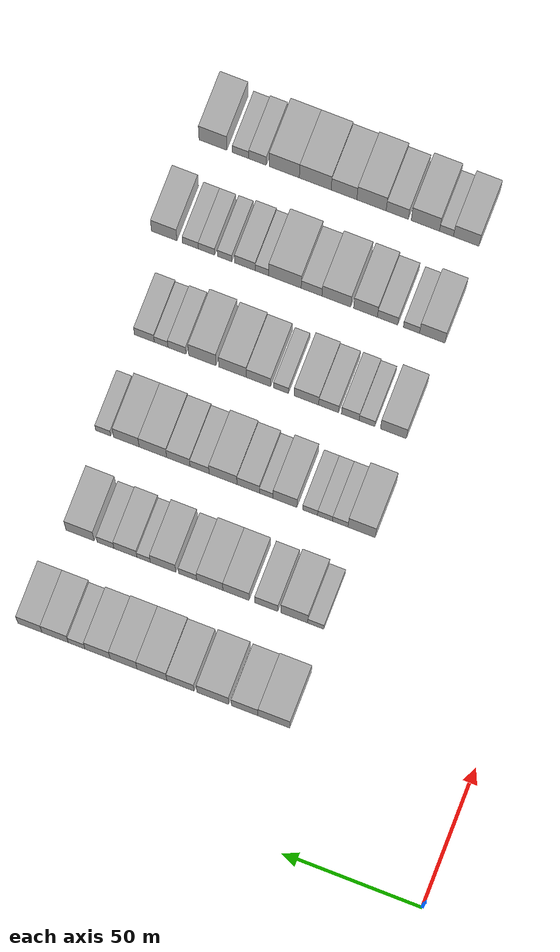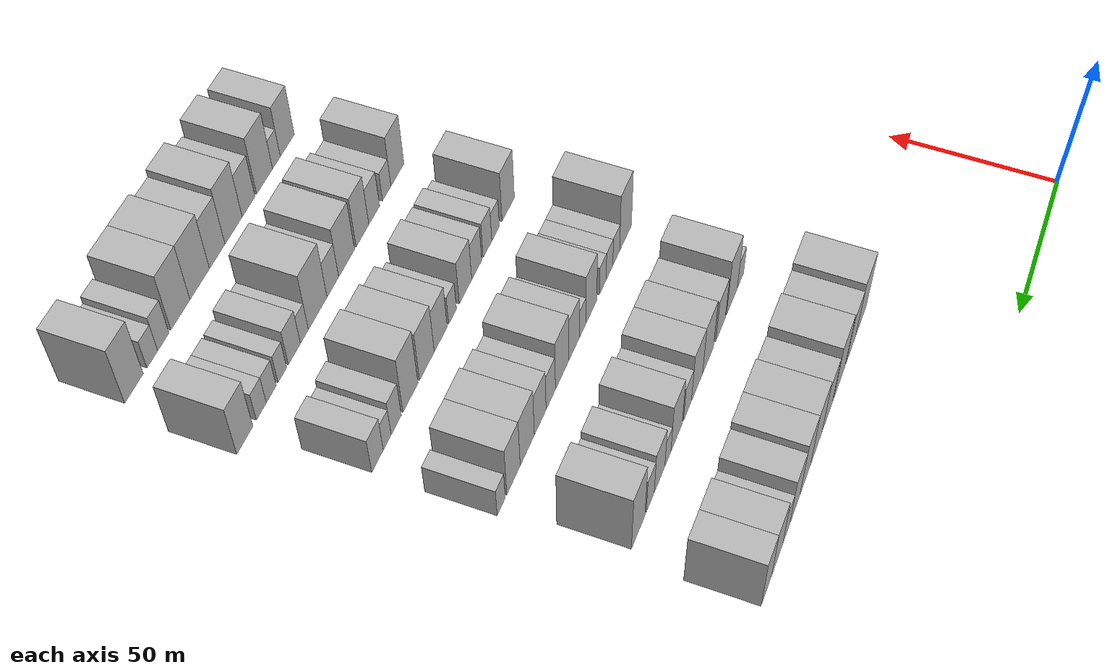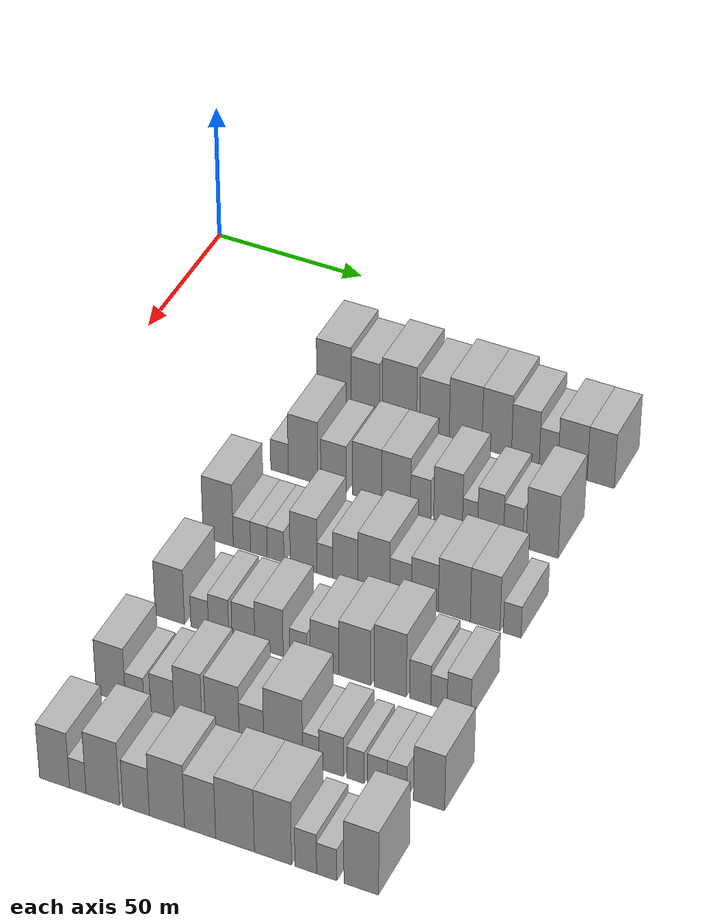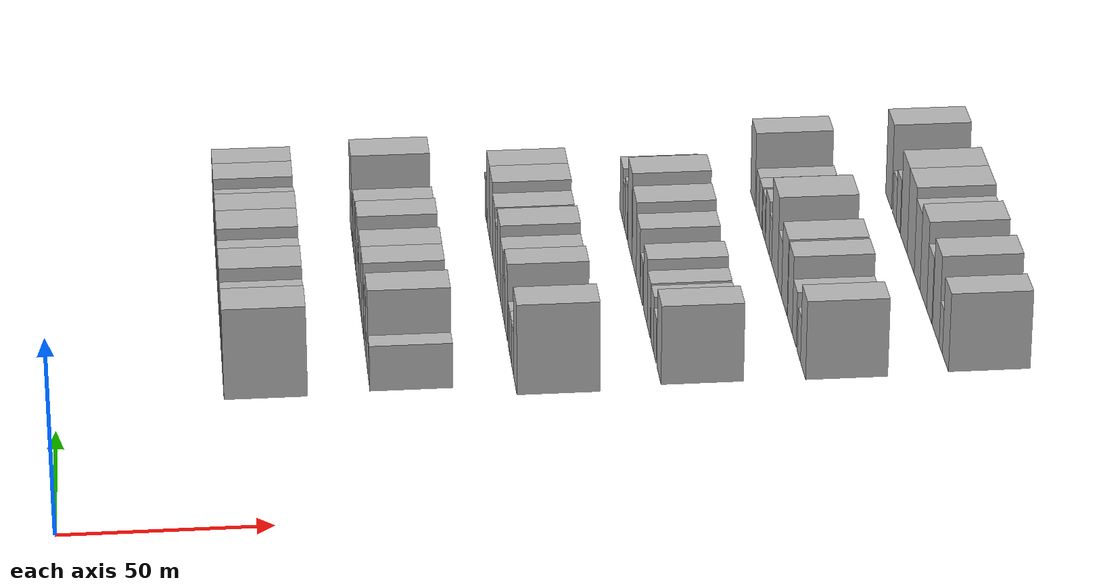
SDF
<sdf version="1.6">
 <world name="default">
  <model name="building_63">
   <static>1</static>
   <pose>50.0000 68.3072 0 0.000000 0.000000 0.000000</pose>
   <link name="link">
    <pose>0 0 12.00 0 0 0</pose>
    <collision name="collision"><geometry><box><size>20.0000 11.3854 24.0000</size></box></geometry></collision>
    <visual name="visual">
     <cast_shadows>0</cast_shadows>
     <geometry><box><size>20.0000 11.3854 24.0000</size></box></geometry>
     <material>
      <script>
       <uri>model://HANNAS_wall/materials/scripts</uri>
       <uri>model://HANNAS_wall/materials/textures</uri>
       <name>vrc/HANNAS_wall</name>
      </script>
     </material>
    </visual>
   </link>
  </model>
  <model name="building_64">
   <static>1</static>
   <pose>50.0000 78.7420 0 0.000000 0.000000 0.000000</pose>
   <link name="link">
    <pose>0 0 10.50 0 0 0</pose>
    <collision name="collision"><geometry><box><size>20.0000 9.4842 21.0000</size></box></geometry></collision>
    <visual name="visual">
     <cast_shadows>0</cast_shadows>
     <geometry><box><size>20.0000 9.4842 21.0000</size></box></geometry>
     <material>
      <script>
       <uri>model://HANNAS_wall/materials/scripts</uri>
       <uri>model://HANNAS_wall/materials/textures</uri>
       <name>vrc/HANNAS_wall</name>
      </script>
     </material>
    </visual>
   </link>
  </model>
  <model name="building_65">
   <static>1</static>
   <pose>50.0000 90.1589 0 0.000000 0.000000 0.000000</pose>
   <link name="link">
    <pose>0 0 12.00 0 0 0</pose>
    <collision name="collision"><geometry><box><size>20.0000 11.3498 24.0000</size></box></geometry></collision>
    <visual name="visual">
     <cast_shadows>0</cast_shadows>
     <geometry><box><size>20.0000 11.3498 24.0000</size></box></geometry>
     <material>
      <script>
       <uri>model://HANNAS_wall/materials/scripts</uri>
       <uri>model://HANNAS_wall/materials/textures</uri>
       <name>vrc/HANNAS_wall</name>
      </script>
     </material>
    </visual>
   </link>
  </model>
  <model name="building_66">
   <static>1</static>
   <pose>50.0000 101.7021 0 0.000000 0.000000 0.000000</pose>
   <link name="link">
    <pose>0 0 10.50 0 0 0</pose>
    <collision name="collision"><geometry><box><size>20.0000 9.7366 21.0000</size></box></geometry></collision>
    <visual name="visual">
     <cast_shadows>0</cast_shadows>
     <geometry><box><size>20.0000 9.7366 21.0000</size></box></geometry>
     <material>
      <script>
       <uri>model://HANNAS_wall/materials/scripts</uri>
       <uri>model://HANNAS_wall/materials/textures</uri>
       <name>vrc/HANNAS_wall</name>
      </script>
     </material>
    </visual>
   </link>
  </model>
  <model name="building_67">
   <static>1</static>
   <pose>50.0000 111.9166 0 0.000000 0.000000 0.000000</pose>
   <link name="link">
    <pose>0 0 12.00 0 0 0</pose>
    <collision name="collision"><geometry><box><size>20.0000 10.6924 24.0000</size></box></geometry></collision>
    <visual name="visual">
     <cast_shadows>0</cast_shadows>
     <geometry><box><size>20.0000 10.6924 24.0000</size></box></geometry>
     <material>
      <script>
       <uri>model://HANNAS_wall/materials/scripts</uri>
       <uri>model://HANNAS_wall/materials/textures</uri>
       <name>vrc/HANNAS_wall</name>
      </script>
     </material>
    </visual>
   </link>
  </model>
  <model name="building_68">
   <static>1</static>
   <pose>50.0000 122.0639 0 0.000000 0.000000 0.000000</pose>
   <link name="link">
    <pose>0 0 12.00 0 0 0</pose>
    <collision name="collision"><geometry><box><size>20.0000 9.6023 24.0000</size></box></geometry></collision>
    <visual name="visual">
     <cast_shadows>0</cast_shadows>
     <geometry><box><size>20.0000 9.6023 24.0000</size></box></geometry>
     <material>
      <script>
       <uri>model://HANNAS_wall/materials/scripts</uri>
       <uri>model://HANNAS_wall/materials/textures</uri>
       <name>vrc/HANNAS_wall</name>
      </script>
     </material>
    </visual>
   </link>
  </model>
  <model name="building_69">
   <static>1</static>
   <pose>50.0000 131.3592 0 0.000000 0.000000 0.000000</pose>
   <link name="link">
    <pose>0 0 10.50 0 0 0</pose>
    <collision name="collision"><geometry><box><size>20.0000 8.9881 21.0000</size></box></geometry></collision>
    <visual name="visual">
     <cast_shadows>0</cast_shadows>
     <geometry><box><size>20.0000 8.9881 21.0000</size></box></geometry>
     <material>
      <script>
       <uri>model://HANNAS_wall/materials/scripts</uri>
       <uri>model://HANNAS_wall/materials/textures</uri>
       <name>vrc/HANNAS_wall</name>
      </script>
     </material>
    </visual>
   </link>
  </model>
  <model name="building_70">
   <static>1</static>
   <pose>50.0000 138.8753 0 0.000000 0.000000 0.000000</pose>
   <link name="link">
    <pose>0 0 7.50 0 0 0</pose>
    <collision name="collision"><geometry><box><size>20.0000 6.0442 15.0000</size></box></geometry></collision>
    <visual name="visual">
     <cast_shadows>0</cast_shadows>
     <geometry><box><size>20.0000 6.0442 15.0000</size></box></geometry>
     <material>
      <script>
       <uri>model://HANNAS_wall/materials/scripts</uri>
       <uri>model://HANNAS_wall/materials/textures</uri>
       <name>vrc/HANNAS_wall</name>
      </script>
     </material>
    </visual>
   </link>
  </model>
  <model name="building_71">
   <static>1</static>
   <pose>50.0000 146.5971 0 0.000000 0.000000 0.000000</pose>
   <link name="link">
    <pose>0 0 10.50 0 0 0</pose>
    <collision name="collision"><geometry><box><size>20.0000 9.3993 21.0000</size></box></geometry></collision>
    <visual name="visual">
     <cast_shadows>0</cast_shadows>
     <geometry><box><size>20.0000 9.3993 21.0000</size></box></geometry>
     <material>
      <script>
       <uri>model://HANNAS_wall/materials/scripts</uri>
       <uri>model://HANNAS_wall/materials/textures</uri>
       <name>vrc/HANNAS_wall</name>
      </script>
     </material>
    </visual>
   </link>
  </model>
  <model name="building_72">
   <static>1</static>
   <pose>50.0000 155.6219 0 0.000000 0.000000 0.000000</pose>
   <link name="link">
    <pose>0 0 10.50 0 0 0</pose>
    <collision name="collision"><geometry><box><size>20.0000 8.6504 21.0000</size></box></geometry></collision>
    <visual name="visual">
     <cast_shadows>0</cast_shadows>
     <geometry><box><size>20.0000 8.6504 21.0000</size></box></geometry>
     <material>
      <script>
       <uri>model://HANNAS_wall/materials/scripts</uri>
       <uri>model://HANNAS_wall/materials/textures</uri>
       <name>vrc/HANNAS_wall</name>
      </script>
     </material>
    </visual>
   </link>
  </model>
  <model name="building_192">
   <static>1</static>
   <pose>85.0000 66.8384 0 0.000000 0.000000 0.000000</pose>
   <link name="link">
    <pose>0 0 6.00 0 0 0</pose>
    <collision name="collision"><geometry><box><size>20.0000 5.7813 12.0000</size></box></geometry></collision>
    <visual name="visual">
     <cast_shadows>0</cast_shadows>
     <geometry><box><size>20.0000 5.7813 12.0000</size></box></geometry>
     <material>
      <script>
       <uri>model://HANNAS_wall/materials/scripts</uri>
       <uri>model://HANNAS_wall/materials/textures</uri>
       <name>vrc/HANNAS_wall</name>
      </script>
     </material>
    </visual>
   </link>
  </model>
  <model name="building_193">
   <static>1</static>
   <pose>85.0000 74.5689 0 0.000000 0.000000 0.000000</pose>
   <link name="link">
    <pose>0 0 12.00 0 0 0</pose>
    <collision name="collision"><geometry><box><size>20.0000 9.6796 24.0000</size></box></geometry></collision>
    <visual name="visual">
     <cast_shadows>0</cast_shadows>
     <geometry><box><size>20.0000 9.6796 24.0000</size></box></geometry>
     <material>
      <script>
       <uri>model://HANNAS_wall/materials/scripts</uri>
       <uri>model://HANNAS_wall/materials/textures</uri>
       <name>vrc/HANNAS_wall</name>
      </script>
     </material>
    </visual>
   </link>
  </model>
  <model name="building_194">
   <static>1</static>
   <pose>85.0000 84.5691 0 0.000000 0.000000 0.000000</pose>
   <link name="link">
    <pose>0 0 9.00 0 0 0</pose>
    <collision name="collision"><geometry><box><size>20.0000 8.3207 18.0000</size></box></geometry></collision>
    <visual name="visual">
     <cast_shadows>0</cast_shadows>
     <geometry><box><size>20.0000 8.3207 18.0000</size></box></geometry>
     <material>
      <script>
       <uri>model://HANNAS_wall/materials/scripts</uri>
       <uri>model://HANNAS_wall/materials/textures</uri>
       <name>vrc/HANNAS_wall</name>
      </script>
     </material>
    </visual>
   </link>
  </model>
  <model name="building_195">
   <static>1</static>
   <pose>85.0000 95.4205 0 0.000000 0.000000 0.000000</pose>
   <link name="link">
    <pose>0 0 10.50 0 0 0</pose>
    <collision name="collision"><geometry><box><size>20.0000 9.3821 21.0000</size></box></geometry></collision>
    <visual name="visual">
     <cast_shadows>0</cast_shadows>
     <geometry><box><size>20.0000 9.3821 21.0000</size></box></geometry>
     <material>
      <script>
       <uri>model://HANNAS_wall/materials/scripts</uri>
       <uri>model://HANNAS_wall/materials/textures</uri>
       <name>vrc/HANNAS_wall</name>
      </script>
     </material>
    </visual>
   </link>
  </model>
  <model name="building_196">
   <static>1</static>
   <pose>85.0000 104.8010 0 0.000000 0.000000 0.000000</pose>
   <link name="link">
    <pose>0 0 10.50 0 0 0</pose>
    <collision name="collision"><geometry><box><size>20.0000 9.3789 21.0000</size></box></geometry></collision>
    <visual name="visual">
     <cast_shadows>0</cast_shadows>
     <geometry><box><size>20.0000 9.3789 21.0000</size></box></geometry>
     <material>
      <script>
       <uri>model://HANNAS_wall/materials/scripts</uri>
       <uri>model://HANNAS_wall/materials/textures</uri>
       <name>vrc/HANNAS_wall</name>
      </script>
     </material>
    </visual>
   </link>
  </model>
  <model name="building_197">
   <static>1</static>
   <pose>85.0000 112.7380 0 0.000000 0.000000 0.000000</pose>
   <link name="link">
    <pose>0 0 7.50 0 0 0</pose>
    <collision name="collision"><geometry><box><size>20.0000 6.4950 15.0000</size></box></geometry></collision>
    <visual name="visual">
     <cast_shadows>0</cast_shadows>
     <geometry><box><size>20.0000 6.4950 15.0000</size></box></geometry>
     <material>
      <script>
       <uri>model://HANNAS_wall/materials/scripts</uri>
       <uri>model://HANNAS_wall/materials/textures</uri>
       <name>vrc/HANNAS_wall</name>
      </script>
     </material>
    </visual>
   </link>
  </model>
  <model name="building_198">
   <static>1</static>
   <pose>85.0000 121.5628 0 0.000000 0.000000 0.000000</pose>
   <link name="link">
    <pose>0 0 10.50 0 0 0</pose>
    <collision name="collision"><geometry><box><size>20.0000 9.1546 21.0000</size></box></geometry></collision>
    <visual name="visual">
     <cast_shadows>0</cast_shadows>
     <geometry><box><size>20.0000 9.1546 21.0000</size></box></geometry>
     <material>
      <script>
       <uri>model://HANNAS_wall/materials/scripts</uri>
       <uri>model://HANNAS_wall/materials/textures</uri>
       <name>vrc/HANNAS_wall</name>
      </script>
     </material>
    </visual>
   </link>
  </model>
  <model name="building_199">
   <static>1</static>
   <pose>85.0000 128.5460 0 0.000000 0.000000 0.000000</pose>
   <link name="link">
    <pose>0 0 6.00 0 0 0</pose>
    <collision name="collision"><geometry><box><size>20.0000 4.8119 12.0000</size></box></geometry></collision>
    <visual name="visual">
     <cast_shadows>0</cast_shadows>
     <geometry><box><size>20.0000 4.8119 12.0000</size></box></geometry>
     <material>
      <script>
       <uri>model://HANNAS_wall/materials/scripts</uri>
       <uri>model://HANNAS_wall/materials/textures</uri>
       <name>vrc/HANNAS_wall</name>
      </script>
     </material>
    </visual>
   </link>
  </model>
  <model name="building_200">
   <static>1</static>
   <pose>85.0000 135.0746 0 0.000000 0.000000 0.000000</pose>
   <link name="link">
    <pose>0 0 9.00 0 0 0</pose>
    <collision name="collision"><geometry><box><size>20.0000 8.2455 18.0000</size></box></geometry></collision>
    <visual name="visual">
     <cast_shadows>0</cast_shadows>
     <geometry><box><size>20.0000 8.2455 18.0000</size></box></geometry>
     <material>
      <script>
       <uri>model://HANNAS_wall/materials/scripts</uri>
       <uri>model://HANNAS_wall/materials/textures</uri>
       <name>vrc/HANNAS_wall</name>
      </script>
     </material>
    </visual>
   </link>
  </model>
  <model name="building_201">
   <static>1</static>
   <pose>85.0000 142.2368 0 0.000000 0.000000 0.000000</pose>
   <link name="link">
    <pose>0 0 7.50 0 0 0</pose>
    <collision name="collision"><geometry><box><size>20.0000 6.0789 15.0000</size></box></geometry></collision>
    <visual name="visual">
     <cast_shadows>0</cast_shadows>
     <geometry><box><size>20.0000 6.0789 15.0000</size></box></geometry>
     <material>
      <script>
       <uri>model://HANNAS_wall/materials/scripts</uri>
       <uri>model://HANNAS_wall/materials/textures</uri>
       <name>vrc/HANNAS_wall</name>
      </script>
     </material>
    </visual>
   </link>
  </model>
  <model name="building_202">
   <static>1</static>
   <pose>85.0000 151.3462 0 0.000000 0.000000 0.000000</pose>
   <link name="link">
    <pose>0 0 12.00 0 0 0</pose>
    <collision name="collision"><geometry><box><size>20.0000 10.1400 24.0000</size></box></geometry></collision>
    <visual name="visual">
     <cast_shadows>0</cast_shadows>
     <geometry><box><size>20.0000 10.1400 24.0000</size></box></geometry>
     <material>
      <script>
       <uri>model://HANNAS_wall/materials/scripts</uri>
       <uri>model://HANNAS_wall/materials/textures</uri>
       <name>vrc/HANNAS_wall</name>
      </script>
     </material>
    </visual>
   </link>
  </model>
  <model name="building_318">
   <static>1</static>
   <pose>120.0000 63.8635 0 0.000000 0.000000 0.000000</pose>
   <link name="link">
    <pose>0 0 12.00 0 0 0</pose>
    <collision name="collision"><geometry><box><size>20.0000 9.7882 24.0000</size></box></geometry></collision>
    <visual name="visual">
     <cast_shadows>0</cast_shadows>
     <geometry><box><size>20.0000 9.7882 24.0000</size></box></geometry>
     <material>
      <script>
       <uri>model://HANNAS_wall/materials/scripts</uri>
       <uri>model://HANNAS_wall/materials/textures</uri>
       <name>vrc/HANNAS_wall</name>
      </script>
     </material>
    </visual>
   </link>
  </model>
  <model name="building_319">
   <static>1</static>
   <pose>120.0000 71.5526 0 0.000000 0.000000 0.000000</pose>
   <link name="link">
    <pose>0 0 6.00 0 0 0</pose>
    <collision name="collision"><geometry><box><size>20.0000 5.5900 12.0000</size></box></geometry></collision>
    <visual name="visual">
     <cast_shadows>0</cast_shadows>
     <geometry><box><size>20.0000 5.5900 12.0000</size></box></geometry>
     <material>
      <script>
       <uri>model://HANNAS_wall/materials/scripts</uri>
       <uri>model://HANNAS_wall/materials/textures</uri>
       <name>vrc/HANNAS_wall</name>
      </script>
     </material>
    </visual>
   </link>
  </model>
  <model name="building_320">
   <static>1</static>
   <pose>120.0000 77.0161 0 0.000000 0.000000 0.000000</pose>
   <link name="link">
    <pose>0 0 6.00 0 0 0</pose>
    <collision name="collision"><geometry><box><size>20.0000 5.3370 12.0000</size></box></geometry></collision>
    <visual name="visual">
     <cast_shadows>0</cast_shadows>
     <geometry><box><size>20.0000 5.3370 12.0000</size></box></geometry>
     <material>
      <script>
       <uri>model://HANNAS_wall/materials/scripts</uri>
       <uri>model://HANNAS_wall/materials/textures</uri>
       <name>vrc/HANNAS_wall</name>
      </script>
     </material>
    </visual>
   </link>
  </model>
  <model name="building_321">
   <static>1</static>
   <pose>120.0000 82.3859 0 0.000000 0.000000 0.000000</pose>
   <link name="link">
    <pose>0 0 6.00 0 0 0</pose>
    <collision name="collision"><geometry><box><size>20.0000 5.4027 12.0000</size></box></geometry></collision>
    <visual name="visual">
     <cast_shadows>0</cast_shadows>
     <geometry><box><size>20.0000 5.4027 12.0000</size></box></geometry>
     <material>
      <script>
       <uri>model://HANNAS_wall/materials/scripts</uri>
       <uri>model://HANNAS_wall/materials/textures</uri>
       <name>vrc/HANNAS_wall</name>
      </script>
     </material>
    </visual>
   </link>
  </model>
  <model name="building_322">
   <static>1</static>
   <pose>120.0000 91.3780 0 0.000000 0.000000 0.000000</pose>
   <link name="link">
    <pose>0 0 10.50 0 0 0</pose>
    <collision name="collision"><geometry><box><size>20.0000 8.5814 21.0000</size></box></geometry></collision>
    <visual name="visual">
     <cast_shadows>0</cast_shadows>
     <geometry><box><size>20.0000 8.5814 21.0000</size></box></geometry>
     <material>
      <script>
       <uri>model://HANNAS_wall/materials/scripts</uri>
       <uri>model://HANNAS_wall/materials/textures</uri>
       <name>vrc/HANNAS_wall</name>
      </script>
     </material>
    </visual>
   </link>
  </model>
  <model name="building_323">
   <static>1</static>
   <pose>120.0000 98.1339 0 0.000000 0.000000 0.000000</pose>
   <link name="link">
    <pose>0 0 6.00 0 0 0</pose>
    <collision name="collision"><geometry><box><size>20.0000 4.9304 12.0000</size></box></geometry></collision>
    <visual name="visual">
     <cast_shadows>0</cast_shadows>
     <geometry><box><size>20.0000 4.9304 12.0000</size></box></geometry>
     <material>
      <script>
       <uri>model://HANNAS_wall/materials/scripts</uri>
       <uri>model://HANNAS_wall/materials/textures</uri>
       <name>vrc/HANNAS_wall</name>
      </script>
     </material>
    </visual>
   </link>
  </model>
  <model name="building_324">
   <static>1</static>
   <pose>120.0000 104.6269 0 0.000000 0.000000 0.000000</pose>
   <link name="link">
    <pose>0 0 9.00 0 0 0</pose>
    <collision name="collision"><geometry><box><size>20.0000 8.0557 18.0000</size></box></geometry></collision>
    <visual name="visual">
     <cast_shadows>0</cast_shadows>
     <geometry><box><size>20.0000 8.0557 18.0000</size></box></geometry>
     <material>
      <script>
       <uri>model://HANNAS_wall/materials/scripts</uri>
       <uri>model://HANNAS_wall/materials/textures</uri>
       <name>vrc/HANNAS_wall</name>
      </script>
     </material>
    </visual>
   </link>
  </model>
  <model name="building_325">
   <static>1</static>
   <pose>120.0000 113.6623 0 0.000000 0.000000 0.000000</pose>
   <link name="link">
    <pose>0 0 10.50 0 0 0</pose>
    <collision name="collision"><geometry><box><size>20.0000 10.0149 21.0000</size></box></geometry></collision>
    <visual name="visual">
     <cast_shadows>0</cast_shadows>
     <geometry><box><size>20.0000 10.0149 21.0000</size></box></geometry>
     <material>
      <script>
       <uri>model://HANNAS_wall/materials/scripts</uri>
       <uri>model://HANNAS_wall/materials/textures</uri>
       <name>vrc/HANNAS_wall</name>
      </script>
     </material>
    </visual>
   </link>
  </model>
  <model name="building_326">
   <static>1</static>
   <pose>120.0000 122.0898 0 0.000000 0.000000 0.000000</pose>
   <link name="link">
    <pose>0 0 7.50 0 0 0</pose>
    <collision name="collision"><geometry><box><size>20.0000 6.8402 15.0000</size></box></geometry></collision>
    <visual name="visual">
     <cast_shadows>0</cast_shadows>
     <geometry><box><size>20.0000 6.8402 15.0000</size></box></geometry>
     <material>
      <script>
       <uri>model://HANNAS_wall/materials/scripts</uri>
       <uri>model://HANNAS_wall/materials/textures</uri>
       <name>vrc/HANNAS_wall</name>
      </script>
     </material>
    </visual>
   </link>
  </model>
  <model name="building_327">
   <static>1</static>
   <pose>120.0000 129.7097 0 0.000000 0.000000 0.000000</pose>
   <link name="link">
    <pose>0 0 9.00 0 0 0</pose>
    <collision name="collision"><geometry><box><size>20.0000 8.3996 18.0000</size></box></geometry></collision>
    <visual name="visual">
     <cast_shadows>0</cast_shadows>
     <geometry><box><size>20.0000 8.3996 18.0000</size></box></geometry>
     <material>
      <script>
       <uri>model://HANNAS_wall/materials/scripts</uri>
       <uri>model://HANNAS_wall/materials/textures</uri>
       <name>vrc/HANNAS_wall</name>
      </script>
     </material>
    </visual>
   </link>
  </model>
  <model name="building_328">
   <static>1</static>
   <pose>120.0000 138.8685 0 0.000000 0.000000 0.000000</pose>
   <link name="link">
    <pose>0 0 10.50 0 0 0</pose>
    <collision name="collision"><geometry><box><size>20.0000 9.9180 21.0000</size></box></geometry></collision>
    <visual name="visual">
     <cast_shadows>0</cast_shadows>
     <geometry><box><size>20.0000 9.9180 21.0000</size></box></geometry>
     <material>
      <script>
       <uri>model://HANNAS_wall/materials/scripts</uri>
       <uri>model://HANNAS_wall/materials/textures</uri>
       <name>vrc/HANNAS_wall</name>
      </script>
     </material>
    </visual>
   </link>
  </model>
  <model name="building_329">
   <static>1</static>
   <pose>120.0000 148.4328 0 0.000000 0.000000 0.000000</pose>
   <link name="link">
    <pose>0 0 10.50 0 0 0</pose>
    <collision name="collision"><geometry><box><size>20.0000 9.2106 21.0000</size></box></geometry></collision>
    <visual name="visual">
     <cast_shadows>0</cast_shadows>
     <geometry><box><size>20.0000 9.2106 21.0000</size></box></geometry>
     <material>
      <script>
       <uri>model://HANNAS_wall/materials/scripts</uri>
       <uri>model://HANNAS_wall/materials/textures</uri>
       <name>vrc/HANNAS_wall</name>
      </script>
     </material>
    </visual>
   </link>
  </model>
  <model name="building_330">
   <static>1</static>
   <pose>120.0000 156.7709 0 0.000000 0.000000 0.000000</pose>
   <link name="link">
    <pose>0 0 6.00 0 0 0</pose>
    <collision name="collision"><geometry><box><size>20.0000 5.4656 12.0000</size></box></geometry></collision>
    <visual name="visual">
     <cast_shadows>0</cast_shadows>
     <geometry><box><size>20.0000 5.4656 12.0000</size></box></geometry>
     <material>
      <script>
       <uri>model://HANNAS_wall/materials/scripts</uri>
       <uri>model://HANNAS_wall/materials/textures</uri>
       <name>vrc/HANNAS_wall</name>
      </script>
     </material>
    </visual>
   </link>
  </model>
  <model name="building_451">
   <static>1</static>
   <pose>155.0000 65.8855 0 0.000000 0.000000 0.000000</pose>
   <link name="link">
    <pose>0 0 10.50 0 0 0</pose>
    <collision name="collision"><geometry><box><size>20.0000 9.3335 21.0000</size></box></geometry></collision>
    <visual name="visual">
     <cast_shadows>0</cast_shadows>
     <geometry><box><size>20.0000 9.3335 21.0000</size></box></geometry>
     <material>
      <script>
       <uri>model://HANNAS_wall/materials/scripts</uri>
       <uri>model://HANNAS_wall/materials/textures</uri>
       <name>vrc/HANNAS_wall</name>
      </script>
     </material>
    </visual>
   </link>
  </model>
  <model name="building_452">
   <static>1</static>
   <pose>155.0000 75.3764 0 0.000000 0.000000 0.000000</pose>
   <link name="link">
    <pose>0 0 6.00 0 0 0</pose>
    <collision name="collision"><geometry><box><size>20.0000 5.6483 12.0000</size></box></geometry></collision>
    <visual name="visual">
     <cast_shadows>0</cast_shadows>
     <geometry><box><size>20.0000 5.6483 12.0000</size></box></geometry>
     <material>
      <script>
       <uri>model://HANNAS_wall/materials/scripts</uri>
       <uri>model://HANNAS_wall/materials/textures</uri>
       <name>vrc/HANNAS_wall</name>
      </script>
     </material>
    </visual>
   </link>
  </model>
  <model name="building_453">
   <static>1</static>
   <pose>155.0000 81.3987 0 0.000000 0.000000 0.000000</pose>
   <link name="link">
    <pose>0 0 7.50 0 0 0</pose>
    <collision name="collision"><geometry><box><size>20.0000 6.3963 15.0000</size></box></geometry></collision>
    <visual name="visual">
     <cast_shadows>0</cast_shadows>
     <geometry><box><size>20.0000 6.3963 15.0000</size></box></geometry>
     <material>
      <script>
       <uri>model://HANNAS_wall/materials/scripts</uri>
       <uri>model://HANNAS_wall/materials/textures</uri>
       <name>vrc/HANNAS_wall</name>
      </script>
     </material>
    </visual>
   </link>
  </model>
  <model name="building_454">
   <static>1</static>
   <pose>155.0000 89.1889 0 0.000000 0.000000 0.000000</pose>
   <link name="link">
    <pose>0 0 7.50 0 0 0</pose>
    <collision name="collision"><geometry><box><size>20.0000 7.1841 15.0000</size></box></geometry></collision>
    <visual name="visual">
     <cast_shadows>0</cast_shadows>
     <geometry><box><size>20.0000 7.1841 15.0000</size></box></geometry>
     <material>
      <script>
       <uri>model://HANNAS_wall/materials/scripts</uri>
       <uri>model://HANNAS_wall/materials/textures</uri>
       <name>vrc/HANNAS_wall</name>
      </script>
     </material>
    </visual>
   </link>
  </model>
  <model name="building_455">
   <static>1</static>
   <pose>155.0000 97.2176 0 0.000000 0.000000 0.000000</pose>
   <link name="link">
    <pose>0 0 9.00 0 0 0</pose>
    <collision name="collision"><geometry><box><size>20.0000 8.8732 18.0000</size></box></geometry></collision>
    <visual name="visual">
     <cast_shadows>0</cast_shadows>
     <geometry><box><size>20.0000 8.8732 18.0000</size></box></geometry>
     <material>
      <script>
       <uri>model://HANNAS_wall/materials/scripts</uri>
       <uri>model://HANNAS_wall/materials/textures</uri>
       <name>vrc/HANNAS_wall</name>
      </script>
     </material>
    </visual>
   </link>
  </model>
  <model name="building_456">
   <static>1</static>
   <pose>155.0000 106.3478 0 0.000000 0.000000 0.000000</pose>
   <link name="link">
    <pose>0 0 6.00 0 0 0</pose>
    <collision name="collision"><geometry><box><size>20.0000 5.3872 12.0000</size></box></geometry></collision>
    <visual name="visual">
     <cast_shadows>0</cast_shadows>
     <geometry><box><size>20.0000 5.3872 12.0000</size></box></geometry>
     <material>
      <script>
       <uri>model://HANNAS_wall/materials/scripts</uri>
       <uri>model://HANNAS_wall/materials/textures</uri>
       <name>vrc/HANNAS_wall</name>
      </script>
     </material>
    </visual>
   </link>
  </model>
  <model name="building_457">
   <static>1</static>
   <pose>155.0000 114.4646 0 0.000000 0.000000 0.000000</pose>
   <link name="link">
    <pose>0 0 9.00 0 0 0</pose>
    <collision name="collision"><geometry><box><size>20.0000 8.8464 18.0000</size></box></geometry></collision>
    <visual name="visual">
     <cast_shadows>0</cast_shadows>
     <geometry><box><size>20.0000 8.8464 18.0000</size></box></geometry>
     <material>
      <script>
       <uri>model://HANNAS_wall/materials/scripts</uri>
       <uri>model://HANNAS_wall/materials/textures</uri>
       <name>vrc/HANNAS_wall</name>
      </script>
     </material>
    </visual>
   </link>
  </model>
  <model name="building_458">
   <static>1</static>
   <pose>155.0000 123.8259 0 0.000000 0.000000 0.000000</pose>
   <link name="link">
    <pose>0 0 10.50 0 0 0</pose>
    <collision name="collision"><geometry><box><size>20.0000 9.8761 21.0000</size></box></geometry></collision>
    <visual name="visual">
     <cast_shadows>0</cast_shadows>
     <geometry><box><size>20.0000 9.8761 21.0000</size></box></geometry>
     <material>
      <script>
       <uri>model://HANNAS_wall/materials/scripts</uri>
       <uri>model://HANNAS_wall/materials/textures</uri>
       <name>vrc/HANNAS_wall</name>
      </script>
     </material>
    </visual>
   </link>
  </model>
  <model name="building_459">
   <static>1</static>
   <pose>155.0000 134.6800 0 0.000000 0.000000 0.000000</pose>
   <link name="link">
    <pose>0 0 12.00 0 0 0</pose>
    <collision name="collision"><geometry><box><size>20.0000 9.8322 24.0000</size></box></geometry></collision>
    <visual name="visual">
     <cast_shadows>0</cast_shadows>
     <geometry><box><size>20.0000 9.8322 24.0000</size></box></geometry>
     <material>
      <script>
       <uri>model://HANNAS_wall/materials/scripts</uri>
       <uri>model://HANNAS_wall/materials/textures</uri>
       <name>vrc/HANNAS_wall</name>
      </script>
     </material>
    </visual>
   </link>
  </model>
  <model name="building_460">
   <static>1</static>
   <pose>155.0000 143.8297 0 0.000000 0.000000 0.000000</pose>
   <link name="link">
    <pose>0 0 7.50 0 0 0</pose>
    <collision name="collision"><geometry><box><size>20.0000 6.4671 15.0000</size></box></geometry></collision>
    <visual name="visual">
     <cast_shadows>0</cast_shadows>
     <geometry><box><size>20.0000 6.4671 15.0000</size></box></geometry>
     <material>
      <script>
       <uri>model://HANNAS_wall/materials/scripts</uri>
       <uri>model://HANNAS_wall/materials/textures</uri>
       <name>vrc/HANNAS_wall</name>
      </script>
     </material>
    </visual>
   </link>
  </model>
  <model name="building_461">
   <static>1</static>
   <pose>155.0000 149.5438 0 0.000000 0.000000 0.000000</pose>
   <link name="link">
    <pose>0 0 6.00 0 0 0</pose>
    <collision name="collision"><geometry><box><size>20.0000 4.9611 12.0000</size></box></geometry></collision>
    <visual name="visual">
     <cast_shadows>0</cast_shadows>
     <geometry><box><size>20.0000 4.9611 12.0000</size></box></geometry>
     <material>
      <script>
       <uri>model://HANNAS_wall/materials/scripts</uri>
       <uri>model://HANNAS_wall/materials/textures</uri>
       <name>vrc/HANNAS_wall</name>
      </script>
     </material>
    </visual>
   </link>
  </model>
  <model name="building_462">
   <static>1</static>
   <pose>155.0000 155.6038 0 0.000000 0.000000 0.000000</pose>
   <link name="link">
    <pose>0 0 7.50 0 0 0</pose>
    <collision name="collision"><geometry><box><size>20.0000 7.1589 15.0000</size></box></geometry></collision>
    <visual name="visual">
     <cast_shadows>0</cast_shadows>
     <geometry><box><size>20.0000 7.1589 15.0000</size></box></geometry>
     <material>
      <script>
       <uri>model://HANNAS_wall/materials/scripts</uri>
       <uri>model://HANNAS_wall/materials/textures</uri>
       <name>vrc/HANNAS_wall</name>
      </script>
     </material>
    </visual>
   </link>
  </model>
  <model name="building_581">
   <static>1</static>
   <pose>190.0000 65.3028 0 0.000000 0.000000 0.000000</pose>
   <link name="link">
    <pose>0 0 10.50 0 0 0</pose>
    <collision name="collision"><geometry><box><size>20.0000 9.1581 21.0000</size></box></geometry></collision>
    <visual name="visual">
     <cast_shadows>0</cast_shadows>
     <geometry><box><size>20.0000 9.1581 21.0000</size></box></geometry>
     <material>
      <script>
       <uri>model://HANNAS_wall/materials/scripts</uri>
       <uri>model://HANNAS_wall/materials/textures</uri>
       <name>vrc/HANNAS_wall</name>
      </script>
     </material>
    </visual>
   </link>
  </model>
  <model name="building_582">
   <static>1</static>
   <pose>190.0000 72.8061 0 0.000000 0.000000 0.000000</pose>
   <link name="link">
    <pose>0 0 6.00 0 0 0</pose>
    <collision name="collision"><geometry><box><size>20.0000 5.8483 12.0000</size></box></geometry></collision>
    <visual name="visual">
     <cast_shadows>0</cast_shadows>
     <geometry><box><size>20.0000 5.8483 12.0000</size></box></geometry>
     <material>
      <script>
       <uri>model://HANNAS_wall/materials/scripts</uri>
       <uri>model://HANNAS_wall/materials/textures</uri>
       <name>vrc/HANNAS_wall</name>
      </script>
     </material>
    </visual>
   </link>
  </model>
  <model name="building_583">
   <static>1</static>
   <pose>190.0000 81.4094 0 0.000000 0.000000 0.000000</pose>
   <link name="link">
    <pose>0 0 7.50 0 0 0</pose>
    <collision name="collision"><geometry><box><size>20.0000 7.3584 15.0000</size></box></geometry></collision>
    <visual name="visual">
     <cast_shadows>0</cast_shadows>
     <geometry><box><size>20.0000 7.3584 15.0000</size></box></geometry>
     <material>
      <script>
       <uri>model://HANNAS_wall/materials/scripts</uri>
       <uri>model://HANNAS_wall/materials/textures</uri>
       <name>vrc/HANNAS_wall</name>
      </script>
     </material>
    </visual>
   </link>
  </model>
  <model name="building_584">
   <static>1</static>
   <pose>190.0000 89.3812 0 0.000000 0.000000 0.000000</pose>
   <link name="link">
    <pose>0 0 10.50 0 0 0</pose>
    <collision name="collision"><geometry><box><size>20.0000 8.5850 21.0000</size></box></geometry></collision>
    <visual name="visual">
     <cast_shadows>0</cast_shadows>
     <geometry><box><size>20.0000 8.5850 21.0000</size></box></geometry>
     <material>
      <script>
       <uri>model://HANNAS_wall/materials/scripts</uri>
       <uri>model://HANNAS_wall/materials/textures</uri>
       <name>vrc/HANNAS_wall</name>
      </script>
     </material>
    </visual>
   </link>
  </model>
  <model name="building_585">
   <static>1</static>
   <pose>190.0000 99.8752 0 0.000000 0.000000 0.000000</pose>
   <link name="link">
    <pose>0 0 10.50 0 0 0</pose>
    <collision name="collision"><geometry><box><size>20.0000 10.4030 21.0000</size></box></geometry></collision>
    <visual name="visual">
     <cast_shadows>0</cast_shadows>
     <geometry><box><size>20.0000 10.4030 21.0000</size></box></geometry>
     <material>
      <script>
       <uri>model://HANNAS_wall/materials/scripts</uri>
       <uri>model://HANNAS_wall/materials/textures</uri>
       <name>vrc/HANNAS_wall</name>
      </script>
     </material>
    </visual>
   </link>
  </model>
  <model name="building_586">
   <static>1</static>
   <pose>190.0000 108.8245 0 0.000000 0.000000 0.000000</pose>
   <link name="link">
    <pose>0 0 7.50 0 0 0</pose>
    <collision name="collision"><geometry><box><size>20.0000 7.4956 15.0000</size></box></geometry></collision>
    <visual name="visual">
     <cast_shadows>0</cast_shadows>
     <geometry><box><size>20.0000 7.4956 15.0000</size></box></geometry>
     <material>
      <script>
       <uri>model://HANNAS_wall/materials/scripts</uri>
       <uri>model://HANNAS_wall/materials/textures</uri>
       <name>vrc/HANNAS_wall</name>
      </script>
     </material>
    </visual>
   </link>
  </model>
  <model name="building_587">
   <static>1</static>
   <pose>190.0000 118.4485 0 0.000000 0.000000 0.000000</pose>
   <link name="link">
    <pose>0 0 12.00 0 0 0</pose>
    <collision name="collision"><geometry><box><size>20.0000 11.7525 24.0000</size></box></geometry></collision>
    <visual name="visual">
     <cast_shadows>0</cast_shadows>
     <geometry><box><size>20.0000 11.7525 24.0000</size></box></geometry>
     <material>
      <script>
       <uri>model://HANNAS_wall/materials/scripts</uri>
       <uri>model://HANNAS_wall/materials/textures</uri>
       <name>vrc/HANNAS_wall</name>
      </script>
     </material>
    </visual>
   </link>
  </model>
  <model name="building_588">
   <static>1</static>
   <pose>190.0000 126.7717 0 0.000000 0.000000 0.000000</pose>
   <link name="link">
    <pose>0 0 6.00 0 0 0</pose>
    <collision name="collision"><geometry><box><size>20.0000 4.8938 12.0000</size></box></geometry></collision>
    <visual name="visual">
     <cast_shadows>0</cast_shadows>
     <geometry><box><size>20.0000 4.8938 12.0000</size></box></geometry>
     <material>
      <script>
       <uri>model://HANNAS_wall/materials/scripts</uri>
       <uri>model://HANNAS_wall/materials/textures</uri>
       <name>vrc/HANNAS_wall</name>
      </script>
     </material>
    </visual>
   </link>
  </model>
  <model name="building_589">
   <static>1</static>
   <pose>190.0000 132.9127 0 0.000000 0.000000 0.000000</pose>
   <link name="link">
    <pose>0 0 7.50 0 0 0</pose>
    <collision name="collision"><geometry><box><size>20.0000 7.3882 15.0000</size></box></geometry></collision>
    <visual name="visual">
     <cast_shadows>0</cast_shadows>
     <geometry><box><size>20.0000 7.3882 15.0000</size></box></geometry>
     <material>
      <script>
       <uri>model://HANNAS_wall/materials/scripts</uri>
       <uri>model://HANNAS_wall/materials/textures</uri>
       <name>vrc/HANNAS_wall</name>
      </script>
     </material>
    </visual>
   </link>
  </model>
  <model name="building_590">
   <static>1</static>
   <pose>190.0000 140.2104 0 0.000000 0.000000 0.000000</pose>
   <link name="link">
    <pose>0 0 6.00 0 0 0</pose>
    <collision name="collision"><geometry><box><size>20.0000 5.2074 12.0000</size></box></geometry></collision>
    <visual name="visual">
     <cast_shadows>0</cast_shadows>
     <geometry><box><size>20.0000 5.2074 12.0000</size></box></geometry>
     <material>
      <script>
       <uri>model://HANNAS_wall/materials/scripts</uri>
       <uri>model://HANNAS_wall/materials/textures</uri>
       <name>vrc/HANNAS_wall</name>
      </script>
     </material>
    </visual>
   </link>
  </model>
  <model name="building_591">
   <static>1</static>
   <pose>190.0000 146.7605 0 0.000000 0.000000 0.000000</pose>
   <link name="link">
    <pose>0 0 6.00 0 0 0</pose>
    <collision name="collision"><geometry><box><size>20.0000 5.8927 12.0000</size></box></geometry></collision>
    <visual name="visual">
     <cast_shadows>0</cast_shadows>
     <geometry><box><size>20.0000 5.8927 12.0000</size></box></geometry>
     <material>
      <script>
       <uri>model://HANNAS_wall/materials/scripts</uri>
       <uri>model://HANNAS_wall/materials/textures</uri>
       <name>vrc/HANNAS_wall</name>
      </script>
     </material>
    </visual>
   </link>
  </model>
  <model name="building_592">
   <static>1</static>
   <pose>190.0000 152.5863 0 0.000000 0.000000 0.000000</pose>
   <link name="link">
    <pose>0 0 6.00 0 0 0</pose>
    <collision name="collision"><geometry><box><size>20.0000 5.7589 12.0000</size></box></geometry></collision>
    <visual name="visual">
     <cast_shadows>0</cast_shadows>
     <geometry><box><size>20.0000 5.7589 12.0000</size></box></geometry>
     <material>
      <script>
       <uri>model://HANNAS_wall/materials/scripts</uri>
       <uri>model://HANNAS_wall/materials/textures</uri>
       <name>vrc/HANNAS_wall</name>
      </script>
     </material>
    </visual>
   </link>
  </model>
  <model name="building_593">
   <static>1</static>
   <pose>190.0000 162.0663 0 0.000000 0.000000 0.000000</pose>
   <link name="link">
    <pose>0 0 10.50 0 0 0</pose>
    <collision name="collision"><geometry><box><size>20.0000 9.2012 21.0000</size></box></geometry></collision>
    <visual name="visual">
     <cast_shadows>0</cast_shadows>
     <geometry><box><size>20.0000 9.2012 21.0000</size></box></geometry>
     <material>
      <script>
       <uri>model://HANNAS_wall/materials/scripts</uri>
       <uri>model://HANNAS_wall/materials/textures</uri>
       <name>vrc/HANNAS_wall</name>
      </script>
     </material>
    </visual>
   </link>
  </model>
  <model name="building_713">
   <static>1</static>
   <pose>225.0000 66.4185 0 0.000000 0.000000 0.000000</pose>
   <link name="link">
    <pose>0 0 10.50 0 0 0</pose>
    <collision name="collision"><geometry><box><size>20.0000 9.2233 21.0000</size></box></geometry></collision>
    <visual name="visual">
     <cast_shadows>0</cast_shadows>
     <geometry><box><size>20.0000 9.2233 21.0000</size></box></geometry>
     <material>
      <script>
       <uri>model://HANNAS_wall/materials/scripts</uri>
       <uri>model://HANNAS_wall/materials/textures</uri>
       <name>vrc/HANNAS_wall</name>
      </script>
     </material>
    </visual>
   </link>
  </model>
  <model name="building_714">
   <static>1</static>
   <pose>225.0000 73.5607 0 0.000000 0.000000 0.000000</pose>
   <link name="link">
    <pose>0 0 6.00 0 0 0</pose>
    <collision name="collision"><geometry><box><size>20.0000 5.0613 12.0000</size></box></geometry></collision>
    <visual name="visual">
     <cast_shadows>0</cast_shadows>
     <geometry><box><size>20.0000 5.0613 12.0000</size></box></geometry>
     <material>
      <script>
       <uri>model://HANNAS_wall/materials/scripts</uri>
       <uri>model://HANNAS_wall/materials/textures</uri>
       <name>vrc/HANNAS_wall</name>
      </script>
     </material>
    </visual>
   </link>
  </model>
  <model name="building_715">
   <static>1</static>
   <pose>225.0000 81.2097 0 0.000000 0.000000 0.000000</pose>
   <link name="link">
    <pose>0 0 12.00 0 0 0</pose>
    <collision name="collision"><geometry><box><size>20.0000 10.2368 24.0000</size></box></geometry></collision>
    <visual name="visual">
     <cast_shadows>0</cast_shadows>
     <geometry><box><size>20.0000 10.2368 24.0000</size></box></geometry>
     <material>
      <script>
       <uri>model://HANNAS_wall/materials/scripts</uri>
       <uri>model://HANNAS_wall/materials/textures</uri>
       <name>vrc/HANNAS_wall</name>
      </script>
     </material>
    </visual>
   </link>
  </model>
  <model name="building_716">
   <static>1</static>
   <pose>225.0000 91.3376 0 0.000000 0.000000 0.000000</pose>
   <link name="link">
    <pose>0 0 9.00 0 0 0</pose>
    <collision name="collision"><geometry><box><size>20.0000 8.0190 18.0000</size></box></geometry></collision>
    <visual name="visual">
     <cast_shadows>0</cast_shadows>
     <geometry><box><size>20.0000 8.0190 18.0000</size></box></geometry>
     <material>
      <script>
       <uri>model://HANNAS_wall/materials/scripts</uri>
       <uri>model://HANNAS_wall/materials/textures</uri>
       <name>vrc/HANNAS_wall</name>
      </script>
     </material>
    </visual>
   </link>
  </model>
  <model name="building_717">
   <static>1</static>
   <pose>225.0000 100.6397 0 0.000000 0.000000 0.000000</pose>
   <link name="link">
    <pose>0 0 12.00 0 0 0</pose>
    <collision name="collision"><geometry><box><size>20.0000 10.5851 24.0000</size></box></geometry></collision>
    <visual name="visual">
     <cast_shadows>0</cast_shadows>
     <geometry><box><size>20.0000 10.5851 24.0000</size></box></geometry>
     <material>
      <script>
       <uri>model://HANNAS_wall/materials/scripts</uri>
       <uri>model://HANNAS_wall/materials/textures</uri>
       <name>vrc/HANNAS_wall</name>
      </script>
     </material>
    </visual>
   </link>
  </model>
  <model name="building_718">
   <static>1</static>
   <pose>225.0000 110.5854 0 0.000000 0.000000 0.000000</pose>
   <link name="link">
    <pose>0 0 10.50 0 0 0</pose>
    <collision name="collision"><geometry><box><size>20.0000 9.3064 21.0000</size></box></geometry></collision>
    <visual name="visual">
     <cast_shadows>0</cast_shadows>
     <geometry><box><size>20.0000 9.3064 21.0000</size></box></geometry>
     <material>
      <script>
       <uri>model://HANNAS_wall/materials/scripts</uri>
       <uri>model://HANNAS_wall/materials/textures</uri>
       <name>vrc/HANNAS_wall</name>
      </script>
     </material>
    </visual>
   </link>
  </model>
  <model name="building_719">
   <static>1</static>
   <pose>225.0000 120.9912 0 0.000000 0.000000 0.000000</pose>
   <link name="link">
    <pose>0 0 12.00 0 0 0</pose>
    <collision name="collision"><geometry><box><size>20.0000 11.5051 24.0000</size></box></geometry></collision>
    <visual name="visual">
     <cast_shadows>0</cast_shadows>
     <geometry><box><size>20.0000 11.5051 24.0000</size></box></geometry>
     <material>
      <script>
       <uri>model://HANNAS_wall/materials/scripts</uri>
       <uri>model://HANNAS_wall/materials/textures</uri>
       <name>vrc/HANNAS_wall</name>
      </script>
     </material>
    </visual>
   </link>
  </model>
  <model name="building_720">
   <static>1</static>
   <pose>225.0000 132.2181 0 0.000000 0.000000 0.000000</pose>
   <link name="link">
    <pose>0 0 12.00 0 0 0</pose>
    <collision name="collision"><geometry><box><size>20.0000 10.9487 24.0000</size></box></geometry></collision>
    <visual name="visual">
     <cast_shadows>0</cast_shadows>
     <geometry><box><size>20.0000 10.9487 24.0000</size></box></geometry>
     <material>
      <script>
       <uri>model://HANNAS_wall/materials/scripts</uri>
       <uri>model://HANNAS_wall/materials/textures</uri>
       <name>vrc/HANNAS_wall</name>
      </script>
     </material>
    </visual>
   </link>
  </model>
  <model name="building_721">
   <static>1</static>
   <pose>225.0000 141.8695 0 0.000000 0.000000 0.000000</pose>
   <link name="link">
    <pose>0 0 7.50 0 0 0</pose>
    <collision name="collision"><geometry><box><size>20.0000 6.3541 15.0000</size></box></geometry></collision>
    <visual name="visual">
     <cast_shadows>0</cast_shadows>
     <geometry><box><size>20.0000 6.3541 15.0000</size></box></geometry>
     <material>
      <script>
       <uri>model://HANNAS_wall/materials/scripts</uri>
       <uri>model://HANNAS_wall/materials/textures</uri>
       <name>vrc/HANNAS_wall</name>
      </script>
     </material>
    </visual>
   </link>
  </model>
  <model name="building_722">
   <static>1</static>
   <pose>225.0000 148.0254 0 0.000000 0.000000 0.000000</pose>
   <link name="link">
    <pose>0 0 6.00 0 0 0</pose>
    <collision name="collision"><geometry><box><size>20.0000 5.9578 12.0000</size></box></geometry></collision>
    <visual name="visual">
     <cast_shadows>0</cast_shadows>
     <geometry><box><size>20.0000 5.9578 12.0000</size></box></geometry>
     <material>
      <script>
       <uri>model://HANNAS_wall/materials/scripts</uri>
       <uri>model://HANNAS_wall/materials/textures</uri>
       <name>vrc/HANNAS_wall</name>
      </script>
     </material>
    </visual>
   </link>
  </model>
  <model name="building_723">
   <static>1</static>
   <pose>225.0000 158.0338 0 0.000000 0.000000 0.000000</pose>
   <link name="link">
    <pose>0 0 12.00 0 0 0</pose>
    <collision name="collision"><geometry><box><size>20.0000 10.0589 24.0000</size></box></geometry></collision>
    <visual name="visual">
     <cast_shadows>0</cast_shadows>
     <geometry><box><size>20.0000 10.0589 24.0000</size></box></geometry>
     <material>
      <script>
       <uri>model://HANNAS_wall/materials/scripts</uri>
       <uri>model://HANNAS_wall/materials/textures</uri>
       <name>vrc/HANNAS_wall</name>
      </script>
     </material>
    </visual>
   </link>
  </model>
 </world>
</sdf>
